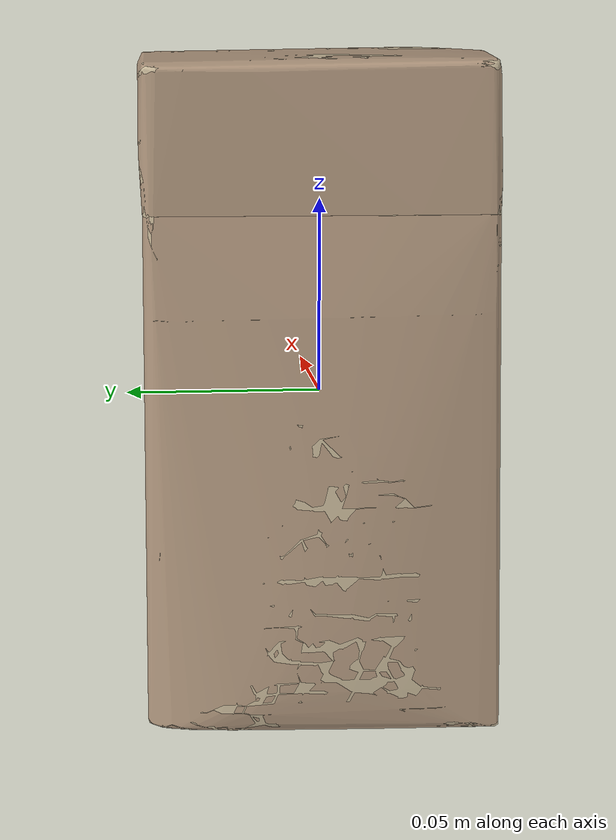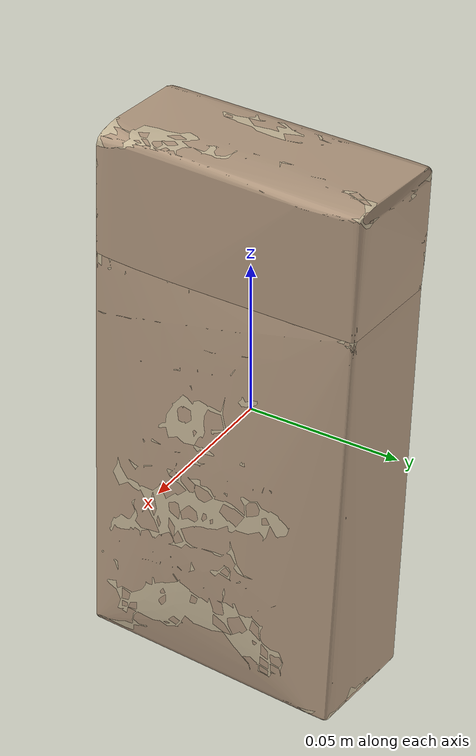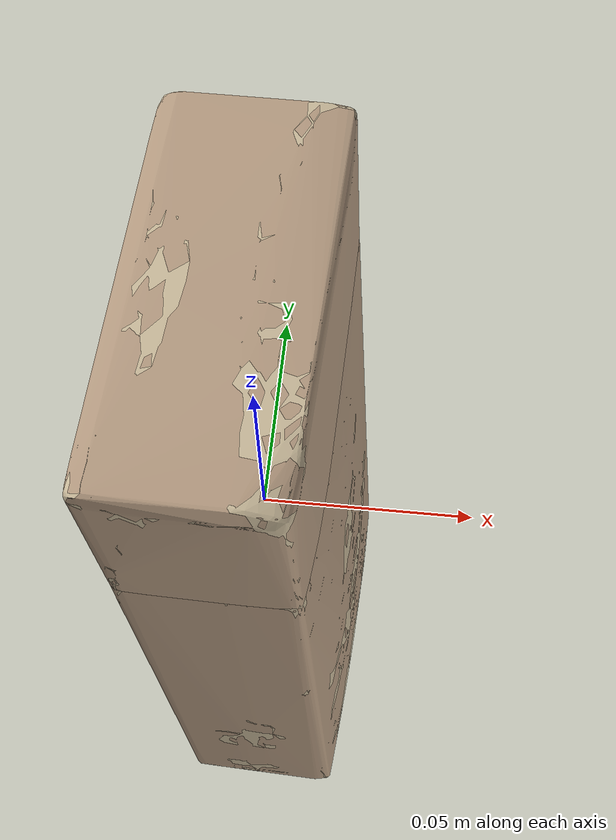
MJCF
<mujoco model="sugar"><asset><mesh name="sugar_part0" file="../ycb_mjcf/sugar/part_00.stl" /><mesh name="sugar_part1" file="../ycb_mjcf/sugar/part_01.stl" /><mesh name="sugar_visual" file="../ycb_mjcf/sugar/visual.stl" /></asset><worldbody><body><body name="object"><geom type="mesh" mesh="sugar_part0" group="0" condim="4" solimp="0.9 0.95 0.001" solref="0.02 1" friction="0.95 0.3 0.1" rgba="0.7 0.6 0.5 1" /><geom type="mesh" mesh="sugar_part1" group="0" condim="4" solimp="0.9 0.95 0.001" solref="0.02 1" friction="0.95 0.3 0.1" rgba="0.7 0.6 0.5 1" /><geom type="mesh" mesh="sugar_visual" group="1" contype="0" conaffinity="0" mass="0" rgba="0.78 0.72 0.6 1" /></body><site name="bottom_site" rgba="0 0 0 0" size="0.005" pos="0.000000 0.000000 -0.088007" /><site name="top_site" rgba="0 0 0 0" size="0.005" pos="0.000000 0.000000 0.088007" /><site name="horizontal_radius_site" rgba="0 0 0 0" size="0.005" pos="0.053189 0.053189 0.000000" /></body></worldbody></mujoco>
